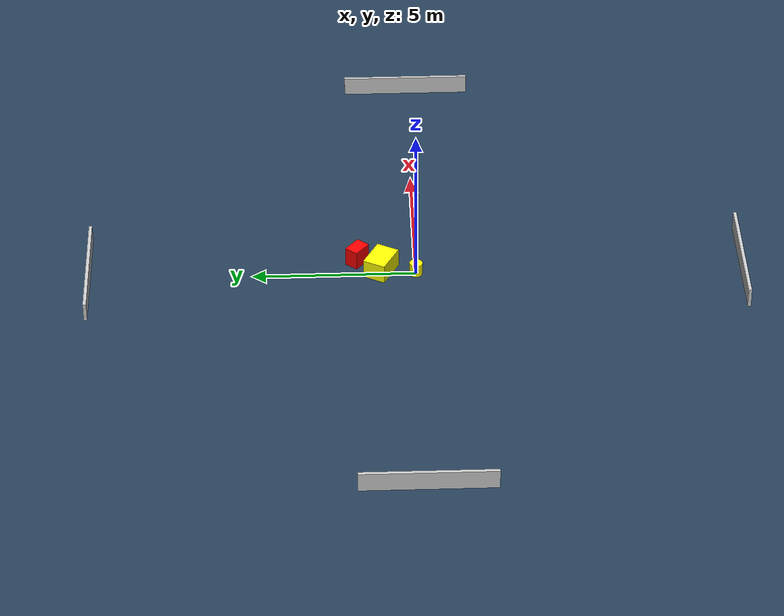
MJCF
<?xml version="1.0" ?>
<mujoco model="generated_environment">
  <option timestep="0.01" integrator="RK4" cone="elliptic"/>
  <default>
    <geom density="1"/>
  </default>
  <asset>
    <texture builtin="gradient" height="3072" name="skybox" rgb1="0.3 0.5 0.7" rgb2="0 0 0" type="skybox" width="512"/>
    <texture builtin="checker" height="300" name="groundplane" rgb1="0.2 0.3 0.4" rgb2="0.1 0.2 0.3" type="2d" width="300"/>
    <material name="groundplane" reflectance="0.2" texrepeat="5 5" texture="groundplane"/>
  </asset>
  <worldbody>
    <light dir="0 0 -1" directional="true" pos="0 0 1.5"/>
    <geom condim="3" friction="0.5 0.005 0.001" material="groundplane" name="floor" pos="0 0 0" size="0 0 0.05" type="plane"/>
    <body name="walls">
      <geom name="wall_1" condim="4" pos="-10.0 0.0 0.3" rgba="0.800000011920929 0.800000011920929 0.800000011920929 1.0" size="0.05 2.0 0.3" type="box"/>
      <geom name="wall_2" condim="4" pos="10.0 0.0 0.3" rgba="0.800000011920929 0.800000011920929 0.800000011920929 1.0" size="0.05 2.0 0.3" type="box"/>
      <geom name="wall_3" condim="4" pos="0.0 -10.0 0.3" rgba="0.800000011920929 0.800000011920929 0.800000011920929 1.0" size="2.0 0.05 0.3" type="box"/>
      <geom name="wall_4" condim="4" pos="0.0 10.0 0.3" rgba="0.800000011920929 0.800000011920929 0.800000011920929 1.0" size="2.0 0.05 0.3" type="box"/>
    </body>
    <body name="robot">
      <joint name="joint_x" type="slide" pos="0 0 0" axis="1 0 0"/>
      <joint name="joint_y" type="slide" pos="0 0 0" axis="0 1 0"/>
      <geom name="robot" type="cylinder" pos="0.0 0.0 0.2" size="0.2 0.2 0.0" mass="5.0" friction="1.0 0.005 0.0001" condim="4" rgba="1.0 1.0 0.0 1.0"/>
    </body>
    <body name="obstacle_1_movable">
      <geom name="obstacle_1_movable" condim="4" pos="0.15713637246612985 1.0653587783651532 0.3" euler="0 0 61.97854874927294" friction="0.0 0.005 0.001" rgba="1.0 1.0 0.0 1.0" size="0.35767511437336696 0.4928485198428941 0.3" type="box" mass="0.1"/>
      <joint type="free"/>
    </body>
    <body name="obstacle_2_static">
      <geom name="obstacle_2_static" condim="4" pos="0.6401796163002837 1.7823090297466653 0.3" euler="0 0 230.07301187047344" friction="0.0 0.005 0.001" rgba="1.0 0.0 0.0 1.0" size="0.21841265085285827 0.3034158903882873 0.3" type="box"/>
    </body>
  </worldbody>
  <actuator>
    <motor name="actuator_x" joint="joint_x" gear="1" ctrlrange="-1 1"/>
    <motor name="actuator_y" joint="joint_y" gear="1" ctrlrange="-1 1"/>
  </actuator>
</mujoco>
